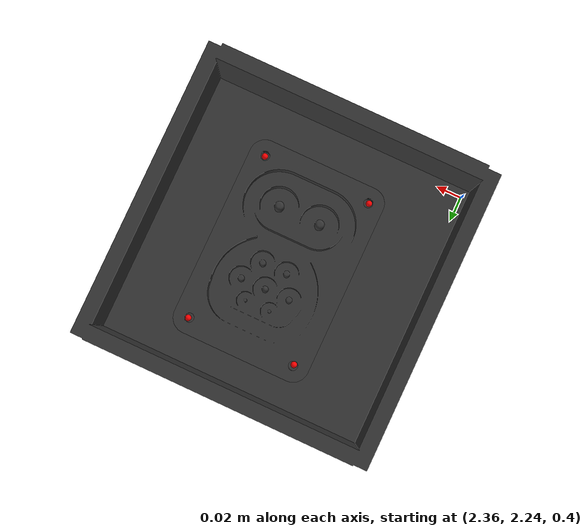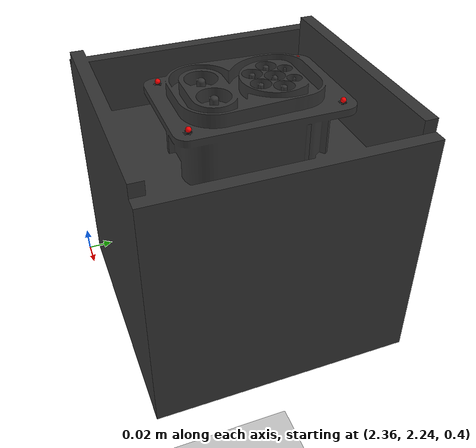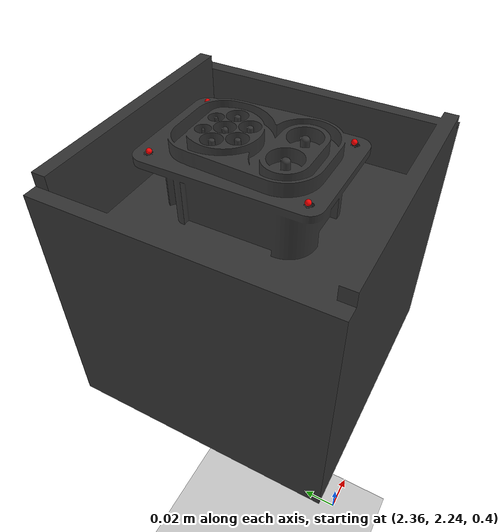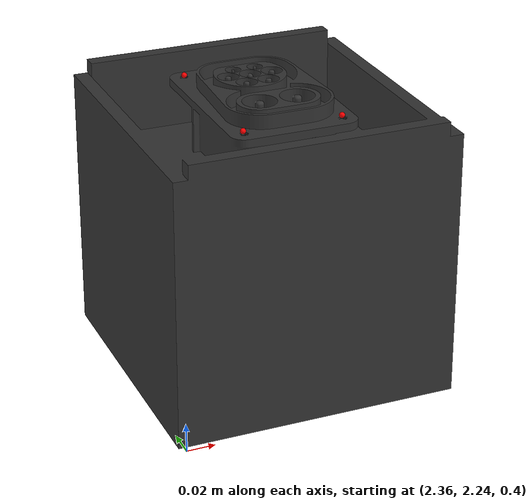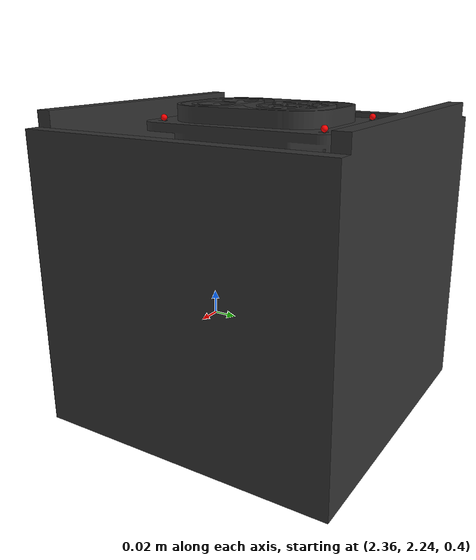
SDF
<sdf version="1.7">
 <world name="default">
  <light name="sun" type="directional">
   <pose>0 0 10 0 -0 0</pose>
   <diffuse>0.8 0.8 0.8 1</diffuse>
   <specular>0.2 0.2 0.2 1</specular>
   <attenuation>
    <range>1000</range>
    <constant>0.9</constant>
    <linear>0.01</linear>
    <quadratic>0.001</quadratic>
   </attenuation>
   <direction>-0.5 0.1 -0.9</direction>
   <spot><inner_angle>0</inner_angle><outer_angle>0</outer_angle><falloff>0</falloff></spot>
  </light>
  <model name="ground_plane">
   <static>1</static>
   <link name="link">
    <collision name="collision">
     <geometry><plane><normal>0 0 1</normal><size>100 100</size></plane></geometry>
     <surface><friction><ode><mu>100</mu><mu2>50</mu2></ode></friction></surface>
    </collision>
    <visual name="visual">
     <cast_shadows>0</cast_shadows>
     <geometry><plane><normal>0 0 1</normal><size>100 100</size></plane></geometry>
     <material>
      <script><uri>file://media/materials/scripts/gazebo.material</uri><name>Gazebo/Grey</name></script>
     </material>
    </visual>
   </link>
  </model>
  <gravity>0 0 -9.8</gravity>
  <magnetic_field>6e-06 2.3e-05 -4.2e-05</magnetic_field>
  <atmosphere type="adiabatic"/>
  <physics type="ode">
   <max_step_size>0.001</max_step_size>
   <real_time_factor>1</real_time_factor>
   <real_time_update_rate>1000</real_time_update_rate>
  </physics>
  <scene><ambient>0.4 0.4 0.4 1</ambient><background>0.7 0.7 0.7 1</background><shadows>1</shadows></scene>
  <spherical_coordinates>
   <surface_model>EARTH_WGS84</surface_model>
   <latitude_deg>0</latitude_deg>
   <longitude_deg>0</longitude_deg>
   <elevation>0</elevation>
   <heading_deg>0</heading_deg>
  </spherical_coordinates>
  <model name="charging_socket_fin">
   <model name="case_link">
    <static>1</static>
    <link name="link">
     <inertial>
      <mass>0.25</mass>
      <inertia><ixx>0.00015</ixx><ixy>0</ixy><ixz>0</ixz><iyy>0.00015</iyy><iyz>0</iyz><izz>0.00015</izz></inertia>
     </inertial>
     <collision name="collision">
      <geometry><mesh><uri>model://case/meshes/case.stl</uri><scale>0.001 0.001 0.001</scale></mesh></geometry>
      <surface>
       <friction><ode><mu>30</mu><mu2>30</mu2></ode></friction>
       <contact><ode><kp>1e+06</kp><kd>100</kd><max_vel>1</max_vel><min_depth>0.002</min_depth></ode></contact>
      </surface>
     </collision>
     <visual name="visual">
      <geometry><mesh><uri>model://case/meshes/case.stl</uri><scale>0.001 0.001 0.001</scale></mesh></geometry>
      <material>
       <ambient>0.2 0.2 0.2 1</ambient>
       <diffuse>0.2 0.2 0.2 1</diffuse>
       <specular>0.1 0.1 0.1 1</specular>
       <emissive>0 0 0 0</emissive>
      </material>
     </visual>
     <velocity_decay><linear>0</linear><angular>0</angular></velocity_decay>
    </link>
    <pose>-0.053281 -0.030479 -0.060411 0 -0 0</pose>
    <gazebo reference="case_link">
     <material>Gazebo/Black</material>
     <mu1>0.2</mu1>
     <mu2>0.2</mu2>
     <selfCollide>1</selfCollide>
    </gazebo>
   </model>
   <model name="led">
    <link name="link">
     <inertial>
      <mass>0.32458</mass>
      <inertia>
       <ixx>6.27254e-05</ixx>
       <ixy>0</ixy>
       <ixz>0</ixz>
       <iyy>6.27254e-05</iyy>
       <iyz>0</iyz>
       <izz>6.27254e-05</izz>
      </inertia>
     </inertial>
     <visual name="visual">
      <geometry><sphere><radius>0.002</radius></sphere></geometry>
      <material>
       <ambient>1 0 0 1</ambient>
       <diffuse>1 0 0 1</diffuse>
       <specular>0.1 0.1 0.1 1</specular>
       <emissive>1 0 0 0.5</emissive>
      </material>
     </visual>
     <collision name="collision">
      <geometry><sphere><radius>0.002</radius></sphere></geometry>
      <surface>
       <friction>
        <ode><mu>1</mu><mu2>1</mu2><fdir1>0 0 0</fdir1><slip1>0</slip1><slip2>0</slip2></ode>
        <torsional>
         <coefficient>1</coefficient>
         <patch_radius>0</patch_radius>
         <surface_radius>0</surface_radius>
         <use_patch_radius>1</use_patch_radius>
         <ode><slip>0</slip></ode>
        </torsional>
       </friction>
       <bounce><restitution_coefficient>0</restitution_coefficient><threshold>1e+06</threshold></bounce>
       <contact>
        <collide_without_contact>0</collide_without_contact>
        <collide_without_contact_bitmask>1</collide_without_contact_bitmask>
        <collide_bitmask>1</collide_bitmask>
        <ode>
         <soft_cfm>0</soft_cfm>
         <soft_erp>0.2</soft_erp>
         <kp>1e+13</kp>
         <kd>1</kd>
         <max_vel>0.01</max_vel>
         <min_depth>0</min_depth>
        </ode>
        <bullet>
         <split_impulse>1</split_impulse>
         <split_impulse_penetration_threshold>-0.01</split_impulse_penetration_threshold>
         <soft_cfm>0</soft_cfm>
         <soft_erp>0.2</soft_erp>
         <kp>1e+13</kp>
         <kd>1</kd>
        </bullet>
       </contact>
      </surface>
     </collision>
    </link>
    <static>0</static>
    <pose>0.013698 0.020863 0.133218 0 -0 0</pose>
   </model>
   <model name="led_clone">
    <link name="link">
     <inertial>
      <mass>0.32458</mass>
      <inertia>
       <ixx>6.27254e-05</ixx>
       <ixy>0</ixy>
       <ixz>0</ixz>
       <iyy>6.27254e-05</iyy>
       <iyz>0</iyz>
       <izz>6.27254e-05</izz>
      </inertia>
     </inertial>
     <visual name="visual">
      <geometry><sphere><radius>0.002</radius></sphere></geometry>
      <material>
       <ambient>1 0 0 1</ambient>
       <diffuse>1 0 0 1</diffuse>
       <specular>0.1 0.1 0.1 1</specular>
       <emissive>1 0 0 0.5</emissive>
      </material>
     </visual>
     <collision name="collision">
      <geometry><sphere><radius>0.002</radius></sphere></geometry>
      <surface>
       <friction>
        <ode><mu>1</mu><mu2>1</mu2><fdir1>0 0 0</fdir1><slip1>0</slip1><slip2>0</slip2></ode>
        <torsional>
         <coefficient>1</coefficient>
         <patch_radius>0</patch_radius>
         <surface_radius>0</surface_radius>
         <use_patch_radius>1</use_patch_radius>
         <ode><slip>0</slip></ode>
        </torsional>
       </friction>
       <bounce><restitution_coefficient>0</restitution_coefficient><threshold>1e+06</threshold></bounce>
       <contact>
        <collide_without_contact>0</collide_without_contact>
        <collide_without_contact_bitmask>1</collide_without_contact_bitmask>
        <collide_bitmask>1</collide_bitmask>
        <ode>
         <soft_cfm>0</soft_cfm>
         <soft_erp>0.2</soft_erp>
         <kp>1e+13</kp>
         <kd>1</kd>
         <max_vel>0.01</max_vel>
         <min_depth>0</min_depth>
        </ode>
        <bullet>
         <split_impulse>1</split_impulse>
         <split_impulse_penetration_threshold>-0.01</split_impulse_penetration_threshold>
         <soft_cfm>0</soft_cfm>
         <soft_erp>0.2</soft_erp>
         <kp>1e+13</kp>
         <kd>1</kd>
        </bullet>
       </contact>
      </surface>
     </collision>
    </link>
    <static>0</static>
    <pose>0.014065 0.129585 0.133218 0 -0 0</pose>
   </model>
   <model name="led_clone_0">
    <link name="link">
     <inertial>
      <mass>0.32458</mass>
      <inertia>
       <ixx>6.27254e-05</ixx>
       <ixy>0</ixy>
       <ixz>0</ixz>
       <iyy>6.27254e-05</iyy>
       <iyz>0</iyz>
       <izz>6.27254e-05</izz>
      </inertia>
     </inertial>
     <visual name="visual">
      <geometry><sphere><radius>0.002</radius></sphere></geometry>
      <material>
       <ambient>1 0 0 1</ambient>
       <diffuse>1 0 0 1</diffuse>
       <specular>0.1 0.1 0.1 1</specular>
       <emissive>1 0 0 0.5</emissive>
      </material>
     </visual>
     <collision name="collision">
      <geometry><sphere><radius>0.002</radius></sphere></geometry>
      <surface>
       <friction>
        <ode><mu>1</mu><mu2>1</mu2><fdir1>0 0 0</fdir1><slip1>0</slip1><slip2>0</slip2></ode>
        <torsional>
         <coefficient>1</coefficient>
         <patch_radius>0</patch_radius>
         <surface_radius>0</surface_radius>
         <use_patch_radius>1</use_patch_radius>
         <ode><slip>0</slip></ode>
        </torsional>
       </friction>
       <bounce><restitution_coefficient>0</restitution_coefficient><threshold>1e+06</threshold></bounce>
       <contact>
        <collide_without_contact>0</collide_without_contact>
        <collide_without_contact_bitmask>1</collide_without_contact_bitmask>
        <collide_bitmask>1</collide_bitmask>
        <ode>
         <soft_cfm>0</soft_cfm>
         <soft_erp>0.2</soft_erp>
         <kp>1e+13</kp>
         <kd>1</kd>
         <max_vel>0.01</max_vel>
         <min_depth>0</min_depth>
        </ode>
        <bullet>
         <split_impulse>1</split_impulse>
         <split_impulse_penetration_threshold>-0.01</split_impulse_penetration_threshold>
         <soft_cfm>0</soft_cfm>
         <soft_erp>0.2</soft_erp>
         <kp>1e+13</kp>
         <kd>1</kd>
        </bullet>
       </contact>
      </surface>
     </collision>
    </link>
    <static>0</static>
    <pose>0.084536 0.130892 0.133218 0 -0 0</pose>
   </model>
   <model name="led_clone_1">
    <link name="link">
     <inertial>
      <mass>0.32458</mass>
      <inertia>
       <ixx>6.27254e-05</ixx>
       <ixy>0</ixy>
       <ixz>0</ixz>
       <iyy>6.27254e-05</iyy>
       <iyz>0</iyz>
       <izz>6.27254e-05</izz>
      </inertia>
     </inertial>
     <visual name="visual">
      <geometry><sphere><radius>0.002</radius></sphere></geometry>
      <material>
       <ambient>1 0 0 1</ambient>
       <diffuse>1 0 0 1</diffuse>
       <specular>0.1 0.1 0.1 1</specular>
       <emissive>1 0 0 0.5</emissive>
      </material>
     </visual>
     <collision name="collision">
      <geometry><sphere><radius>0.002</radius></sphere></geometry>
      <surface>
       <friction>
        <ode><mu>1</mu><mu2>1</mu2><fdir1>0 0 0</fdir1><slip1>0</slip1><slip2>0</slip2></ode>
        <torsional>
         <coefficient>1</coefficient>
         <patch_radius>0</patch_radius>
         <surface_radius>0</surface_radius>
         <use_patch_radius>1</use_patch_radius>
         <ode><slip>0</slip></ode>
        </torsional>
       </friction>
       <bounce><restitution_coefficient>0</restitution_coefficient><threshold>1e+06</threshold></bounce>
       <contact>
        <collide_without_contact>0</collide_without_contact>
        <collide_without_contact_bitmask>1</collide_without_contact_bitmask>
        <collide_bitmask>1</collide_bitmask>
        <ode>
         <soft_cfm>0</soft_cfm>
         <soft_erp>0.2</soft_erp>
         <kp>1e+13</kp>
         <kd>1</kd>
         <max_vel>0.01</max_vel>
         <min_depth>0</min_depth>
        </ode>
        <bullet>
         <split_impulse>1</split_impulse>
         <split_impulse_penetration_threshold>-0.01</split_impulse_penetration_threshold>
         <soft_cfm>0</soft_cfm>
         <soft_erp>0.2</soft_erp>
         <kp>1e+13</kp>
         <kd>1</kd>
        </bullet>
       </contact>
      </surface>
     </collision>
    </link>
    <static>0</static>
    <pose>0.083986 0.021264 0.133218 0 -0 0</pose>
   </model>
   <model name="socket">
    <static>1</static>
    <link name="socket_link">
     <inertial>
      <mass>0.25</mass>
      <inertia><ixx>0.00015</ixx><ixy>0</ixy><ixz>0</ixz><iyy>0.00015</iyy><iyz>0</iyz><izz>0.00015</izz></inertia>
     </inertial>
     <collision name="collision">
      <geometry><mesh><uri>model://socket/meshes/socket.stl</uri><scale>0.001 0.001 0.001</scale></mesh></geometry>
      <surface>
       <friction><ode><mu>30</mu><mu2>30</mu2></ode></friction>
       <contact><ode><kp>1e+06</kp><kd>100</kd><max_vel>1</max_vel><min_depth>0.002</min_depth></ode></contact>
      </surface>
     </collision>
     <visual name="visual">
      <geometry><mesh><uri>model://socket/meshes/socket.stl</uri><scale>0.001 0.001 0.001</scale></mesh></geometry>
      <material>
       <ambient>0.2 0.2 0.2 1</ambient>
       <diffuse>0.2 0.2 0.2 1</diffuse>
       <specular>0.1 0.1 0.1 1</specular>
       <emissive>0 0 0 0</emissive>
      </material>
     </visual>
     <velocity_decay><linear>0</linear><angular>0</angular></velocity_decay>
    </link>
    <pose>0.004244 0.010501 0.006318 0 -0 0</pose>
    <gazebo reference="socket_link">
     <material>Gazebo/Black</material>
     <mu1>0.2</mu1>
     <mu2>0.2</mu2>
     <selfCollide>1</selfCollide>
    </gazebo>
   </model>
   <joint name="link_JOINT_0" type="fixed">
    <parent>case_link::link</parent>
    <child>socket::socket_link</child>
    <physics>
     <ode><limit><cfm>0</cfm><erp>0.2</erp></limit><suspension><cfm>0</cfm><erp>0.2</erp></suspension></ode>
    </physics>
   </joint>
   <joint name="link_JOINT_0" type="fixed">
    <parent>case_link::link</parent>
    <child>socket::socket_link</child>
    <physics>
     <ode><limit><cfm>0</cfm><erp>0.2</erp></limit><suspension><cfm>0</cfm><erp>0.2</erp></suspension></ode>
    </physics>
   </joint>
   <joint name="socket_link_JOINT_1" type="fixed">
    <parent>socket::socket_link</parent>
    <child>led_clone_1::link_LINK_FRAME_VISUAL___Z_AXIS</child>
    <physics>
     <ode><limit><cfm>0</cfm><erp>0.2</erp></limit><suspension><cfm>0</cfm><erp>0.2</erp></suspension></ode>
    </physics>
   </joint>
   <joint name="socket_link_JOINT_5" type="fixed">
    <parent>socket::socket_link</parent>
    <child>led_clone_0::link_LINK_FRAME_VISUAL___Z_AXIS</child>
    <physics>
     <ode><limit><cfm>0</cfm><erp>0.2</erp></limit><suspension><cfm>0</cfm><erp>0.2</erp></suspension></ode>
    </physics>
   </joint>
   <joint name="socket_link_JOINT_6" type="fixed">
    <parent>socket::socket_link</parent>
    <child>led_clone::link</child>
    <physics>
     <ode><limit><cfm>0</cfm><erp>0.2</erp></limit><suspension><cfm>0</cfm><erp>0.2</erp></suspension></ode>
    </physics>
   </joint>
   <joint name="socket_link_JOINT_3" type="fixed">
    <parent>socket::socket_link</parent>
    <child>led::link_LINK_FRAME_VISUAL___Z_AXIS</child>
    <physics>
     <ode><limit><cfm>0</cfm><erp>0.2</erp></limit><suspension><cfm>0</cfm><erp>0.2</erp></suspension></ode>
    </physics>
   </joint>
   <static>1</static>
   <pose>2.41119 2.27962 0.457231 0 -0 0</pose>
  </model>
 </world>
</sdf>
